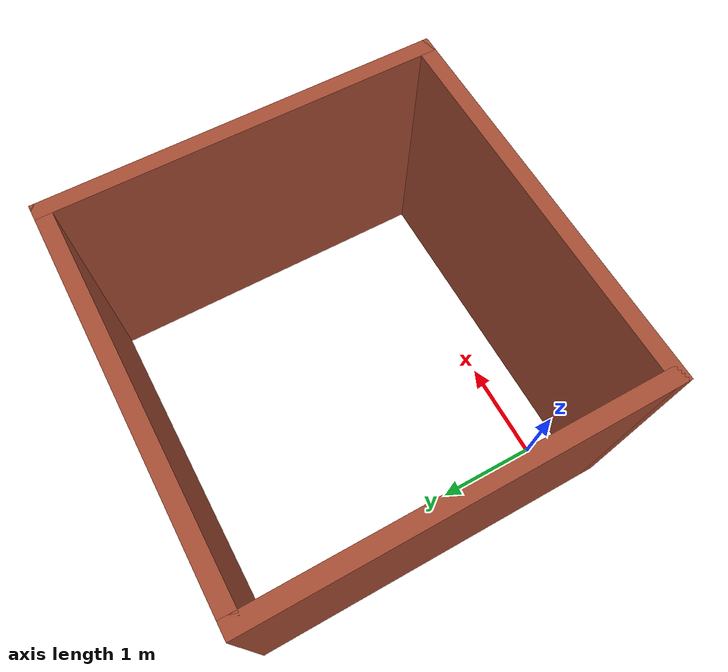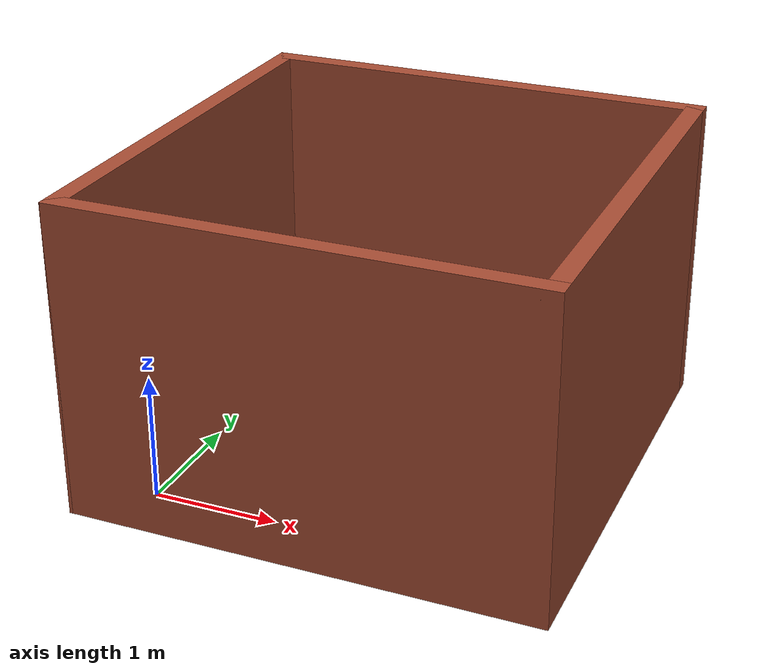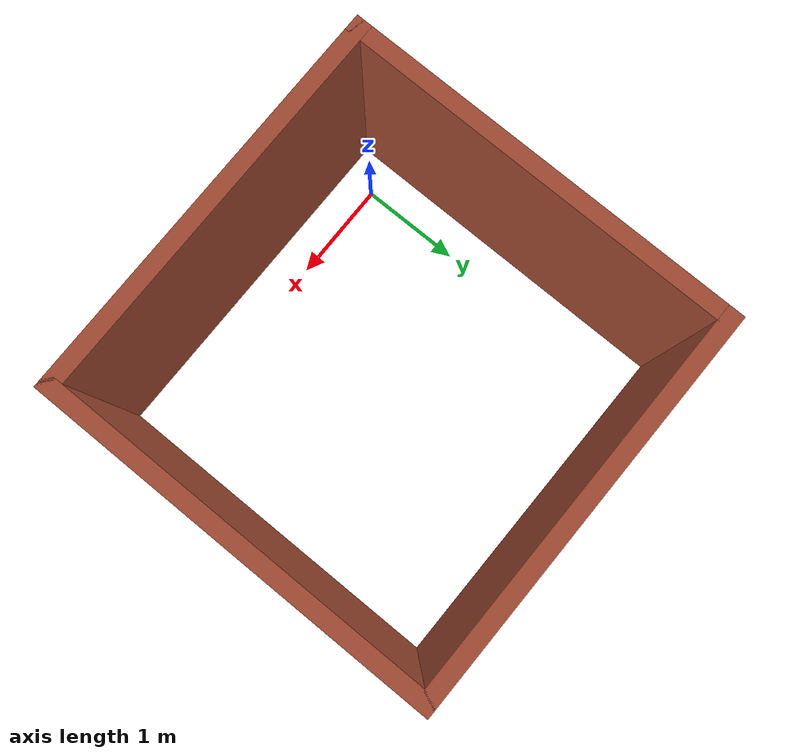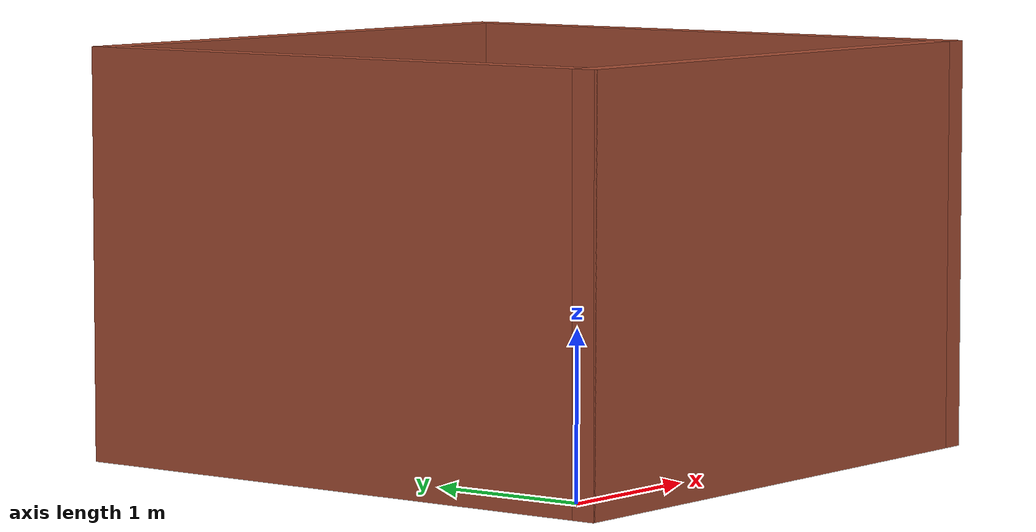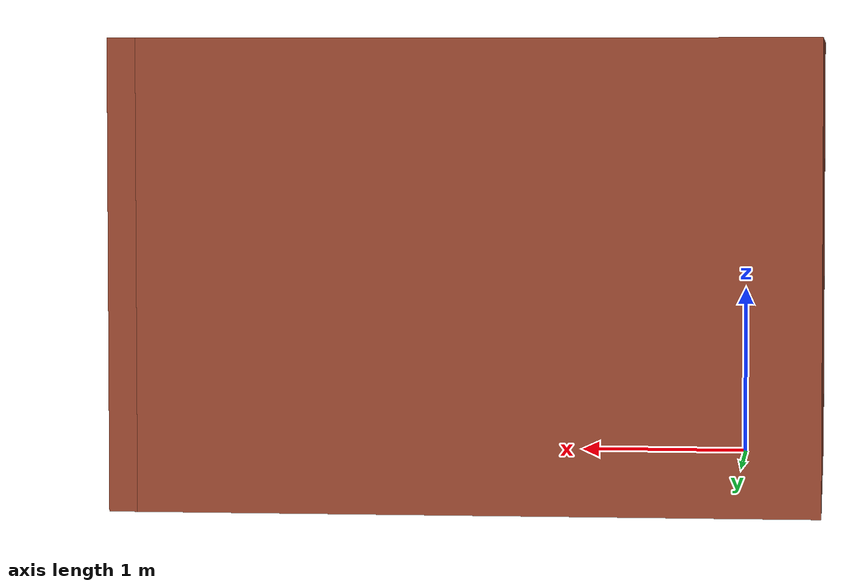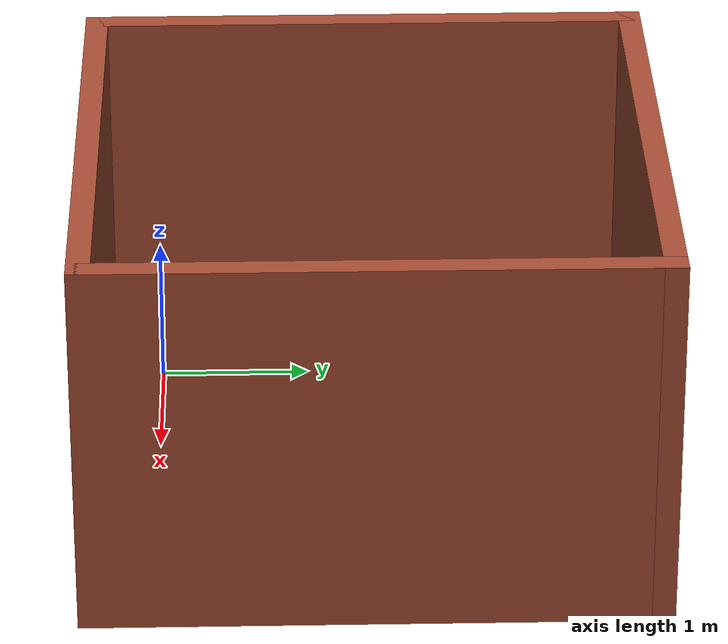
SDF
<?xml version='1.0'?>
<sdf version='1.7'>
  <model name='race'>
    <pose>1.4 1.4 0 0 -0 0</pose>
    <link name='Wall_3'>
      <collision name='Wall_3_Collision'>
        <geometry>
          <box>
            <size>3.75 0.15 2.5</size>
          </box>
        </geometry>
        <pose>0 0 1.25 0 -0 0</pose>
      </collision>
      <visual name='Wall_3_Visual'>
        <pose>0 0 1.25 0 -0 0</pose>
        <geometry>
          <box>
            <size>3.75 0.15 2.5</size>
          </box>
        </geometry>
        <material>
          <script>
            <uri>file://media/materials/scripts/gazebo.material</uri>
            <name>Gazebo/Bricks</name>
          </script>
          <ambient>1 1 1 1</ambient>
        </material>
        <meta>
          <layer>0</layer>
        </meta>
      </visual>
      <pose>-1.8 0 0 0 -0 1.5708</pose>
    </link>
    <link name='Wall_5'>
      <collision name='Wall_5_Collision'>
        <geometry>
          <box>
            <size>3.75 0.15 2.5</size>
          </box>
        </geometry>
        <pose>0 0 1.25 0 -0 0</pose>
      </collision>
      <visual name='Wall_5_Visual'>
        <pose>0 0 1.25 0 -0 0</pose>
        <geometry>
          <box>
            <size>3.75 0.15 2.5</size>
          </box>
        </geometry>
        <material>
          <script>
            <uri>file://media/materials/scripts/gazebo.material</uri>
            <name>Gazebo/Bricks</name>
          </script>
          <ambient>1 1 1 1</ambient>
        </material>
        <meta>
          <layer>0</layer>
        </meta>
      </visual>
      <pose>-0 -1.8 0 0 -0 0</pose>
    </link>
    <link name='Wall_7'>
      <collision name='Wall_7_Collision'>
        <geometry>
          <box>
            <size>3.75 0.15 2.5</size>
          </box>
        </geometry>
        <pose>0 0 1.25 0 -0 0</pose>
      </collision>
      <visual name='Wall_7_Visual'>
        <pose>0 0 1.25 0 -0 0</pose>
        <geometry>
          <box>
            <size>3.75 0.15 2.5</size>
          </box>
        </geometry>
        <material>
          <script>
            <uri>file://media/materials/scripts/gazebo.material</uri>
            <name>Gazebo/Bricks</name>
          </script>
          <ambient>1 1 1 1</ambient>
        </material>
        <meta>
          <layer>0</layer>
        </meta>
      </visual>
      <pose>1.8 0 0 0 -0 1.5708</pose>
    </link>
    <link name='Wall_8'>
      <collision name='Wall_8_Collision'>
        <geometry>
          <box>
            <size>3.75 0.15 2.5</size>
          </box>
        </geometry>
        <pose>0 0 1.25 0 -0 0</pose>
      </collision>
      <visual name='Wall_8_Visual'>
        <pose>0 0 1.25 0 -0 0</pose>
        <geometry>
          <box>
            <size>3.75 0.15 2.5</size>
          </box>
        </geometry>
        <material>
          <script>
            <uri>file://media/materials/scripts/gazebo.material</uri>
            <name>Gazebo/Bricks</name>
          </script>
          <ambient>1 1 1 1</ambient>
        </material>
        <meta>
          <layer>0</layer>
        </meta>
      </visual>
      <pose>-0 1.8 0 0 -0 3.14159</pose>
    </link>
    <static>1</static>
  </model>
</sdf>
